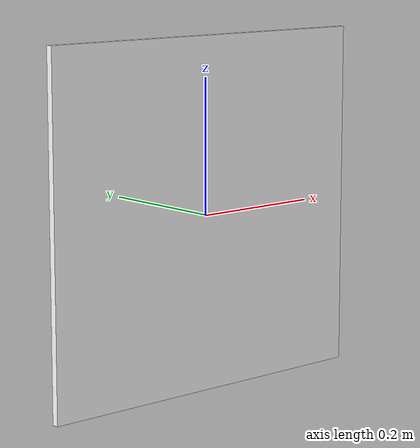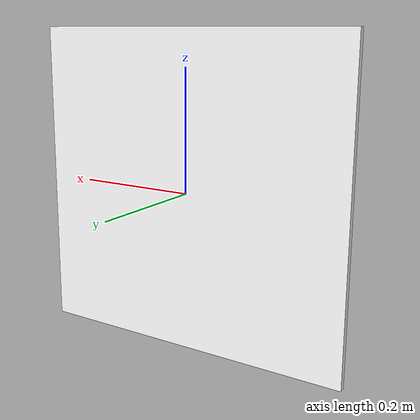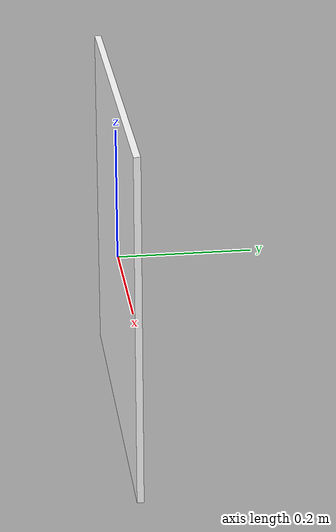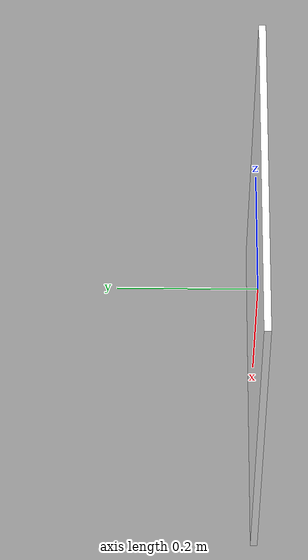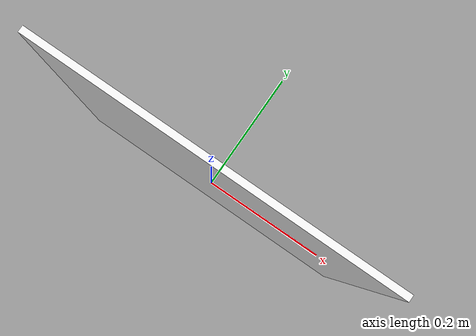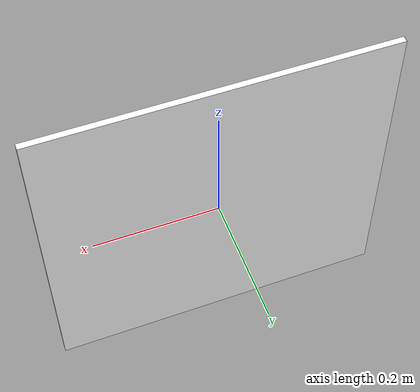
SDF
<?xml version="1.0" ?>
<sdf version="1.6">
  <model name="aruco_marker_0">
    <static>true</static>
    <link name="link">
      <pose>0 0 0 0 0 0</pose>
      <visual name="visual">
        <geometry>
          <box>
            <size>0.55 0.01 0.52</size>
          </box>
        </geometry>
        <material>
          <ambient>1 1 1 1</ambient>
          <diffuse>1 1 1 1</diffuse>
          <specular>0 0 0 1</specular>
          <pbr>
            <metal>
              <albedo_map>/home/marchi/High-PrecisionAutonomousLandingSystemsForUAVsUsingVisualNavigation/Target/nested_paper_target.png</albedo_map>
            </metal>
          </pbr>
        </material>
      </visual>
    </link>
  </model>
</sdf>
